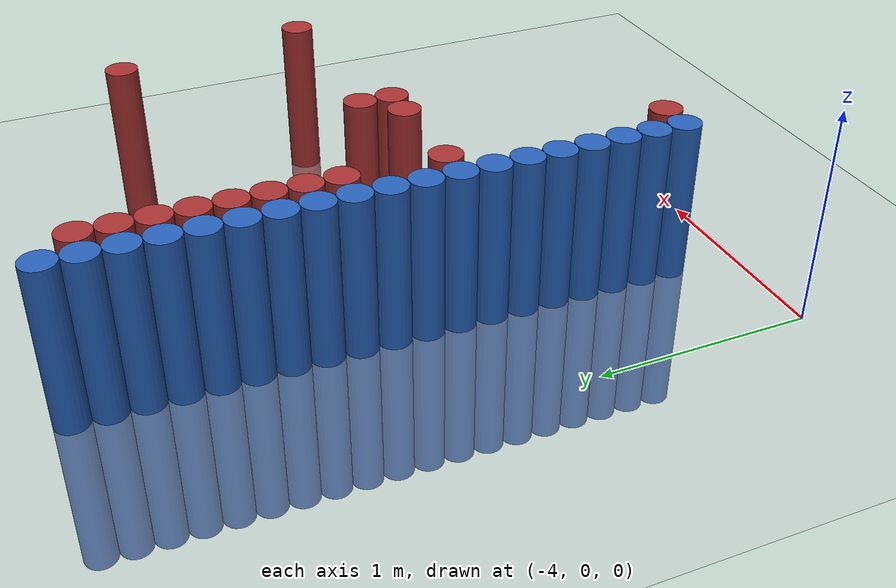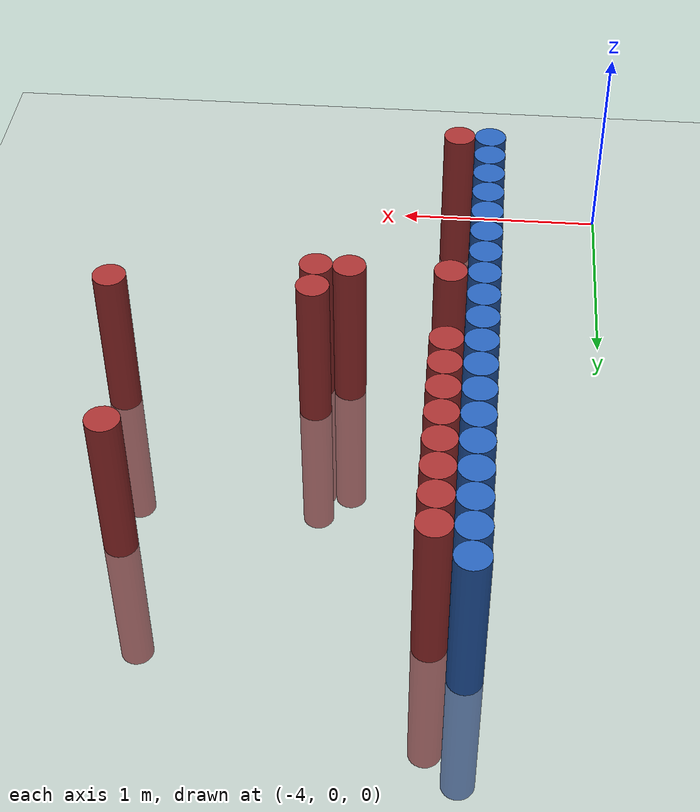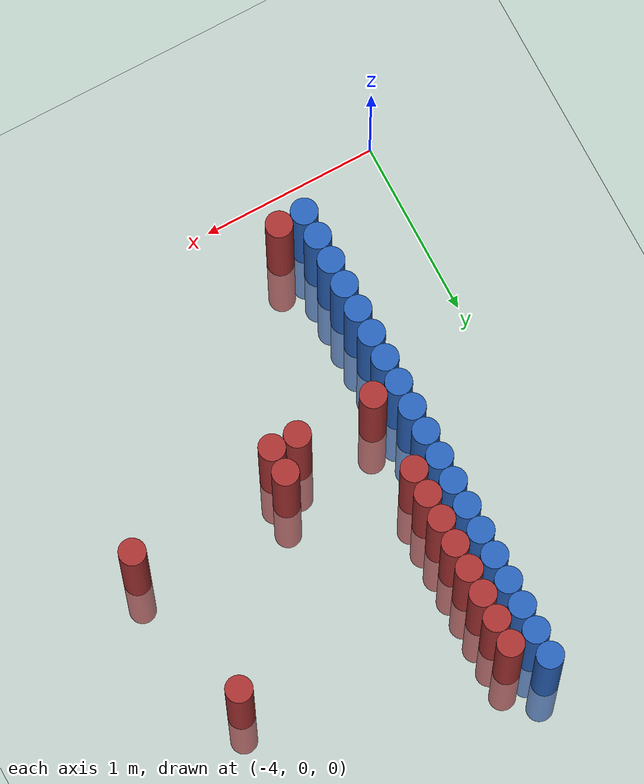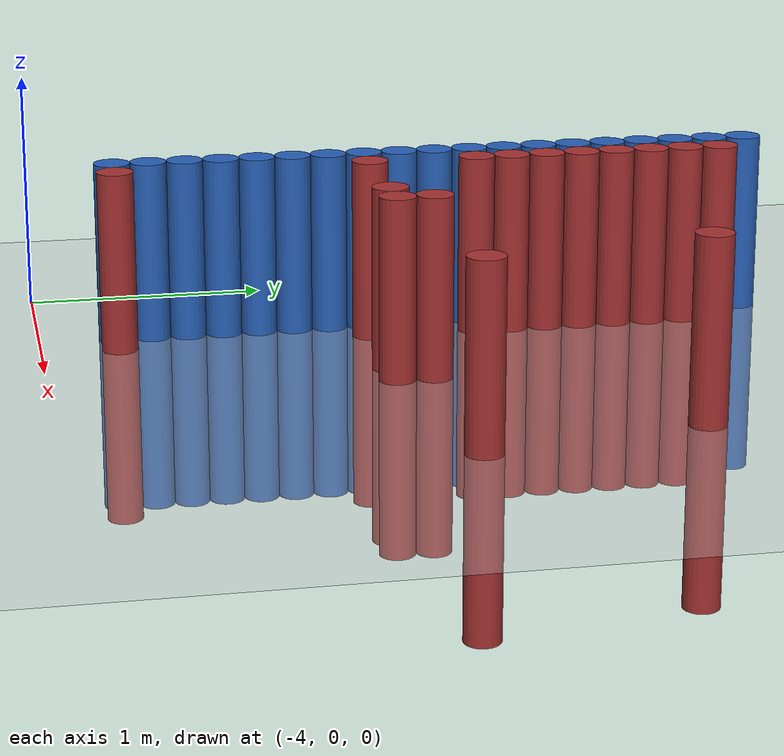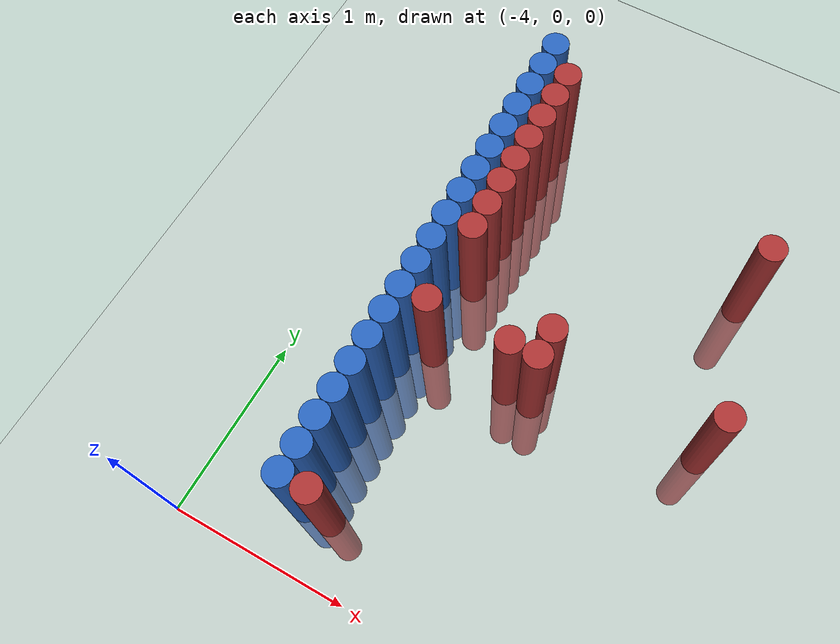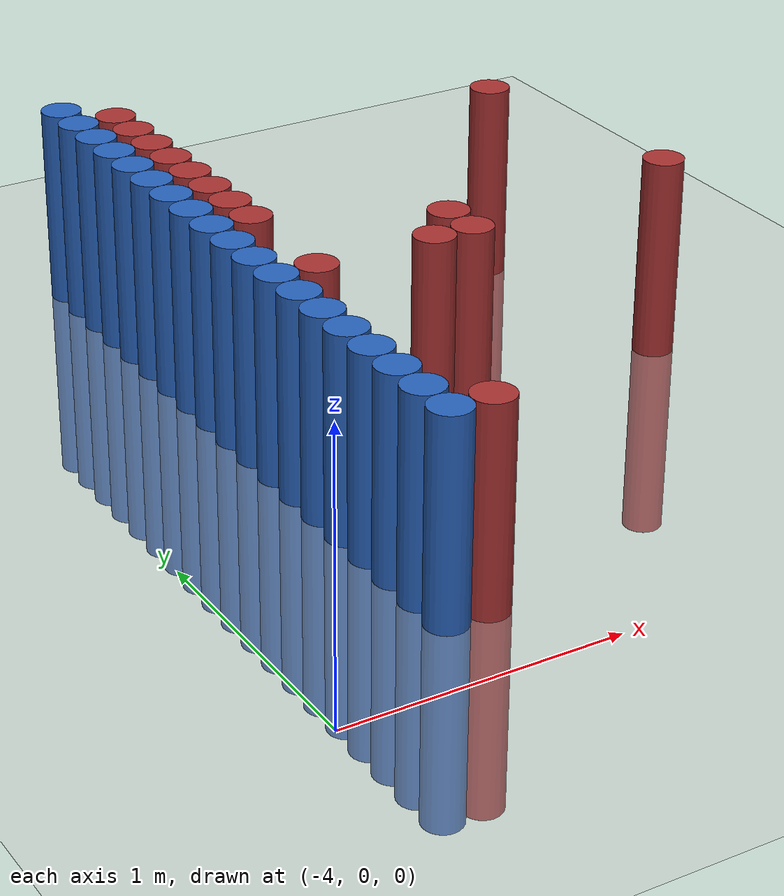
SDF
<sdf version="1.6">
 <world name="default">
  <model name="ground_plane">
   <static>1</static>
   <link name="link">
    <collision name="collision">
     <geometry><plane><normal>0 0 1</normal><size>100 100</size></plane></geometry>
     <surface><friction><ode><mu>100</mu><mu2>50</mu2></ode></friction></surface>
    </collision>
    <visual name="visual">
     <cast_shadows>0</cast_shadows>
     <geometry><plane><normal>0 0 1</normal><size>100 100</size></plane></geometry>
     <material>
      <script><uri>file://media/materials/scripts/gazebo.material</uri><name>Gazebo/Grey</name></script>
     </material>
    </visual>
   </link>
  </model>
  <model name="unit_cylinder_119">
   <static>1</static>
   <pose>-3.425000 0.325000 0.000000 0.000000 0.000000 0.000000</pose>
   <link name="link">
    <inertial>
     <mass>1</mass>
     <inertia><ixx>0.145833</ixx><ixy>0</ixy><ixz>0</ixz><iyy>0.145833</iyy><iyz>0</iyz><izz>0.125</izz></inertia>
    </inertial>
    <collision name="collision">
     <geometry><cylinder><radius>0.075000</radius><length>1.5</length></cylinder></geometry>
    </collision>
    <visual name="visual">
     <geometry><cylinder><radius>0.075000</radius><length>1.5</length></cylinder></geometry>
     <material>
      <ambient>0.152000 0.379000 0.720000 1</ambient>
      <diffuse>0.152000 0.379000 0.720000 1</diffuse>
     </material>
     <material>
      <script><name>Gazebo/Grey</name><uri>file://media/materials/scripts/gazebo.material</uri></script>
     </material>
    </visual>
   </link>
  </model>
  <model name="unit_cylinder_121">
   <static>1</static>
   <pose>-3.425000 0.475000 0.000000 0.000000 0.000000 0.000000</pose>
   <link name="link">
    <inertial>
     <mass>1</mass>
     <inertia><ixx>0.145833</ixx><ixy>0</ixy><ixz>0</ixz><iyy>0.145833</iyy><iyz>0</iyz><izz>0.125</izz></inertia>
    </inertial>
    <collision name="collision">
     <geometry><cylinder><radius>0.075000</radius><length>1.5</length></cylinder></geometry>
    </collision>
    <visual name="visual">
     <geometry><cylinder><radius>0.075000</radius><length>1.5</length></cylinder></geometry>
     <material>
      <ambient>0.152000 0.379000 0.720000 1</ambient>
      <diffuse>0.152000 0.379000 0.720000 1</diffuse>
     </material>
     <material>
      <script><name>Gazebo/Grey</name><uri>file://media/materials/scripts/gazebo.material</uri></script>
     </material>
    </visual>
   </link>
  </model>
  <model name="unit_cylinder_123">
   <static>1</static>
   <pose>-3.425000 0.625000 0.000000 0.000000 0.000000 0.000000</pose>
   <link name="link">
    <inertial>
     <mass>1</mass>
     <inertia><ixx>0.145833</ixx><ixy>0</ixy><ixz>0</ixz><iyy>0.145833</iyy><iyz>0</iyz><izz>0.125</izz></inertia>
    </inertial>
    <collision name="collision">
     <geometry><cylinder><radius>0.075000</radius><length>1.5</length></cylinder></geometry>
    </collision>
    <visual name="visual">
     <geometry><cylinder><radius>0.075000</radius><length>1.5</length></cylinder></geometry>
     <material>
      <ambient>0.152000 0.379000 0.720000 1</ambient>
      <diffuse>0.152000 0.379000 0.720000 1</diffuse>
     </material>
     <material>
      <script><name>Gazebo/Grey</name><uri>file://media/materials/scripts/gazebo.material</uri></script>
     </material>
    </visual>
   </link>
  </model>
  <model name="unit_cylinder_125">
   <static>1</static>
   <pose>-3.425000 0.775000 0.000000 0.000000 0.000000 0.000000</pose>
   <link name="link">
    <inertial>
     <mass>1</mass>
     <inertia><ixx>0.145833</ixx><ixy>0</ixy><ixz>0</ixz><iyy>0.145833</iyy><iyz>0</iyz><izz>0.125</izz></inertia>
    </inertial>
    <collision name="collision">
     <geometry><cylinder><radius>0.075000</radius><length>1.5</length></cylinder></geometry>
    </collision>
    <visual name="visual">
     <geometry><cylinder><radius>0.075000</radius><length>1.5</length></cylinder></geometry>
     <material>
      <ambient>0.152000 0.379000 0.720000 1</ambient>
      <diffuse>0.152000 0.379000 0.720000 1</diffuse>
     </material>
     <material>
      <script><name>Gazebo/Grey</name><uri>file://media/materials/scripts/gazebo.material</uri></script>
     </material>
    </visual>
   </link>
  </model>
  <model name="unit_cylinder_127">
   <static>1</static>
   <pose>-3.425000 0.925000 0.000000 0.000000 0.000000 0.000000</pose>
   <link name="link">
    <inertial>
     <mass>1</mass>
     <inertia><ixx>0.145833</ixx><ixy>0</ixy><ixz>0</ixz><iyy>0.145833</iyy><iyz>0</iyz><izz>0.125</izz></inertia>
    </inertial>
    <collision name="collision">
     <geometry><cylinder><radius>0.075000</radius><length>1.5</length></cylinder></geometry>
    </collision>
    <visual name="visual">
     <geometry><cylinder><radius>0.075000</radius><length>1.5</length></cylinder></geometry>
     <material>
      <ambient>0.152000 0.379000 0.720000 1</ambient>
      <diffuse>0.152000 0.379000 0.720000 1</diffuse>
     </material>
     <material>
      <script><name>Gazebo/Grey</name><uri>file://media/materials/scripts/gazebo.material</uri></script>
     </material>
    </visual>
   </link>
  </model>
  <model name="unit_cylinder_129">
   <static>1</static>
   <pose>-3.425000 1.075000 0.000000 0.000000 0.000000 0.000000</pose>
   <link name="link">
    <inertial>
     <mass>1</mass>
     <inertia><ixx>0.145833</ixx><ixy>0</ixy><ixz>0</ixz><iyy>0.145833</iyy><iyz>0</iyz><izz>0.125</izz></inertia>
    </inertial>
    <collision name="collision">
     <geometry><cylinder><radius>0.075000</radius><length>1.5</length></cylinder></geometry>
    </collision>
    <visual name="visual">
     <geometry><cylinder><radius>0.075000</radius><length>1.5</length></cylinder></geometry>
     <material>
      <ambient>0.152000 0.379000 0.720000 1</ambient>
      <diffuse>0.152000 0.379000 0.720000 1</diffuse>
     </material>
     <material>
      <script><name>Gazebo/Grey</name><uri>file://media/materials/scripts/gazebo.material</uri></script>
     </material>
    </visual>
   </link>
  </model>
  <model name="unit_cylinder_131">
   <static>1</static>
   <pose>-3.425000 1.225000 0.000000 0.000000 0.000000 0.000000</pose>
   <link name="link">
    <inertial>
     <mass>1</mass>
     <inertia><ixx>0.145833</ixx><ixy>0</ixy><ixz>0</ixz><iyy>0.145833</iyy><iyz>0</iyz><izz>0.125</izz></inertia>
    </inertial>
    <collision name="collision">
     <geometry><cylinder><radius>0.075000</radius><length>1.5</length></cylinder></geometry>
    </collision>
    <visual name="visual">
     <geometry><cylinder><radius>0.075000</radius><length>1.5</length></cylinder></geometry>
     <material>
      <ambient>0.152000 0.379000 0.720000 1</ambient>
      <diffuse>0.152000 0.379000 0.720000 1</diffuse>
     </material>
     <material>
      <script><name>Gazebo/Grey</name><uri>file://media/materials/scripts/gazebo.material</uri></script>
     </material>
    </visual>
   </link>
  </model>
  <model name="unit_cylinder_133">
   <static>1</static>
   <pose>-3.425000 1.375000 0.000000 0.000000 0.000000 0.000000</pose>
   <link name="link">
    <inertial>
     <mass>1</mass>
     <inertia><ixx>0.145833</ixx><ixy>0</ixy><ixz>0</ixz><iyy>0.145833</iyy><iyz>0</iyz><izz>0.125</izz></inertia>
    </inertial>
    <collision name="collision">
     <geometry><cylinder><radius>0.075000</radius><length>1.5</length></cylinder></geometry>
    </collision>
    <visual name="visual">
     <geometry><cylinder><radius>0.075000</radius><length>1.5</length></cylinder></geometry>
     <material>
      <ambient>0.152000 0.379000 0.720000 1</ambient>
      <diffuse>0.152000 0.379000 0.720000 1</diffuse>
     </material>
     <material>
      <script><name>Gazebo/Grey</name><uri>file://media/materials/scripts/gazebo.material</uri></script>
     </material>
    </visual>
   </link>
  </model>
  <model name="unit_cylinder_135">
   <static>1</static>
   <pose>-3.425000 1.525000 0.000000 0.000000 0.000000 0.000000</pose>
   <link name="link">
    <inertial>
     <mass>1</mass>
     <inertia><ixx>0.145833</ixx><ixy>0</ixy><ixz>0</ixz><iyy>0.145833</iyy><iyz>0</iyz><izz>0.125</izz></inertia>
    </inertial>
    <collision name="collision">
     <geometry><cylinder><radius>0.075000</radius><length>1.5</length></cylinder></geometry>
    </collision>
    <visual name="visual">
     <geometry><cylinder><radius>0.075000</radius><length>1.5</length></cylinder></geometry>
     <material>
      <ambient>0.152000 0.379000 0.720000 1</ambient>
      <diffuse>0.152000 0.379000 0.720000 1</diffuse>
     </material>
     <material>
      <script><name>Gazebo/Grey</name><uri>file://media/materials/scripts/gazebo.material</uri></script>
     </material>
    </visual>
   </link>
  </model>
  <model name="unit_cylinder_137">
   <static>1</static>
   <pose>-3.425000 1.675000 0.000000 0.000000 0.000000 0.000000</pose>
   <link name="link">
    <inertial>
     <mass>1</mass>
     <inertia><ixx>0.145833</ixx><ixy>0</ixy><ixz>0</ixz><iyy>0.145833</iyy><iyz>0</iyz><izz>0.125</izz></inertia>
    </inertial>
    <collision name="collision">
     <geometry><cylinder><radius>0.075000</radius><length>1.5</length></cylinder></geometry>
    </collision>
    <visual name="visual">
     <geometry><cylinder><radius>0.075000</radius><length>1.5</length></cylinder></geometry>
     <material>
      <ambient>0.152000 0.379000 0.720000 1</ambient>
      <diffuse>0.152000 0.379000 0.720000 1</diffuse>
     </material>
     <material>
      <script><name>Gazebo/Grey</name><uri>file://media/materials/scripts/gazebo.material</uri></script>
     </material>
    </visual>
   </link>
  </model>
  <model name="unit_cylinder_139">
   <static>1</static>
   <pose>-3.425000 1.825000 0.000000 0.000000 0.000000 0.000000</pose>
   <link name="link">
    <inertial>
     <mass>1</mass>
     <inertia><ixx>0.145833</ixx><ixy>0</ixy><ixz>0</ixz><iyy>0.145833</iyy><iyz>0</iyz><izz>0.125</izz></inertia>
    </inertial>
    <collision name="collision">
     <geometry><cylinder><radius>0.075000</radius><length>1.5</length></cylinder></geometry>
    </collision>
    <visual name="visual">
     <geometry><cylinder><radius>0.075000</radius><length>1.5</length></cylinder></geometry>
     <material>
      <ambient>0.152000 0.379000 0.720000 1</ambient>
      <diffuse>0.152000 0.379000 0.720000 1</diffuse>
     </material>
     <material>
      <script><name>Gazebo/Grey</name><uri>file://media/materials/scripts/gazebo.material</uri></script>
     </material>
    </visual>
   </link>
  </model>
  <model name="unit_cylinder_141">
   <static>1</static>
   <pose>-3.425000 1.975000 0.000000 0.000000 0.000000 0.000000</pose>
   <link name="link">
    <inertial>
     <mass>1</mass>
     <inertia><ixx>0.145833</ixx><ixy>0</ixy><ixz>0</ixz><iyy>0.145833</iyy><iyz>0</iyz><izz>0.125</izz></inertia>
    </inertial>
    <collision name="collision">
     <geometry><cylinder><radius>0.075000</radius><length>1.5</length></cylinder></geometry>
    </collision>
    <visual name="visual">
     <geometry><cylinder><radius>0.075000</radius><length>1.5</length></cylinder></geometry>
     <material>
      <ambient>0.152000 0.379000 0.720000 1</ambient>
      <diffuse>0.152000 0.379000 0.720000 1</diffuse>
     </material>
     <material>
      <script><name>Gazebo/Grey</name><uri>file://media/materials/scripts/gazebo.material</uri></script>
     </material>
    </visual>
   </link>
  </model>
  <model name="unit_cylinder_143">
   <static>1</static>
   <pose>-3.425000 2.125000 0.000000 0.000000 0.000000 0.000000</pose>
   <link name="link">
    <inertial>
     <mass>1</mass>
     <inertia><ixx>0.145833</ixx><ixy>0</ixy><ixz>0</ixz><iyy>0.145833</iyy><iyz>0</iyz><izz>0.125</izz></inertia>
    </inertial>
    <collision name="collision">
     <geometry><cylinder><radius>0.075000</radius><length>1.5</length></cylinder></geometry>
    </collision>
    <visual name="visual">
     <geometry><cylinder><radius>0.075000</radius><length>1.5</length></cylinder></geometry>
     <material>
      <ambient>0.152000 0.379000 0.720000 1</ambient>
      <diffuse>0.152000 0.379000 0.720000 1</diffuse>
     </material>
     <material>
      <script><name>Gazebo/Grey</name><uri>file://media/materials/scripts/gazebo.material</uri></script>
     </material>
    </visual>
   </link>
  </model>
  <model name="unit_cylinder_145">
   <static>1</static>
   <pose>-3.425000 2.275000 0.000000 0.000000 0.000000 0.000000</pose>
   <link name="link">
    <inertial>
     <mass>1</mass>
     <inertia><ixx>0.145833</ixx><ixy>0</ixy><ixz>0</ixz><iyy>0.145833</iyy><iyz>0</iyz><izz>0.125</izz></inertia>
    </inertial>
    <collision name="collision">
     <geometry><cylinder><radius>0.075000</radius><length>1.5</length></cylinder></geometry>
    </collision>
    <visual name="visual">
     <geometry><cylinder><radius>0.075000</radius><length>1.5</length></cylinder></geometry>
     <material>
      <ambient>0.152000 0.379000 0.720000 1</ambient>
      <diffuse>0.152000 0.379000 0.720000 1</diffuse>
     </material>
     <material>
      <script><name>Gazebo/Grey</name><uri>file://media/materials/scripts/gazebo.material</uri></script>
     </material>
    </visual>
   </link>
  </model>
  <model name="unit_cylinder_147">
   <static>1</static>
   <pose>-3.425000 2.425000 0.000000 0.000000 0.000000 0.000000</pose>
   <link name="link">
    <inertial>
     <mass>1</mass>
     <inertia><ixx>0.145833</ixx><ixy>0</ixy><ixz>0</ixz><iyy>0.145833</iyy><iyz>0</iyz><izz>0.125</izz></inertia>
    </inertial>
    <collision name="collision">
     <geometry><cylinder><radius>0.075000</radius><length>1.5</length></cylinder></geometry>
    </collision>
    <visual name="visual">
     <geometry><cylinder><radius>0.075000</radius><length>1.5</length></cylinder></geometry>
     <material>
      <ambient>0.152000 0.379000 0.720000 1</ambient>
      <diffuse>0.152000 0.379000 0.720000 1</diffuse>
     </material>
     <material>
      <script><name>Gazebo/Grey</name><uri>file://media/materials/scripts/gazebo.material</uri></script>
     </material>
    </visual>
   </link>
  </model>
  <model name="unit_cylinder_149">
   <static>1</static>
   <pose>-3.425000 2.575000 0.000000 0.000000 0.000000 0.000000</pose>
   <link name="link">
    <inertial>
     <mass>1</mass>
     <inertia><ixx>0.145833</ixx><ixy>0</ixy><ixz>0</ixz><iyy>0.145833</iyy><iyz>0</iyz><izz>0.125</izz></inertia>
    </inertial>
    <collision name="collision">
     <geometry><cylinder><radius>0.075000</radius><length>1.5</length></cylinder></geometry>
    </collision>
    <visual name="visual">
     <geometry><cylinder><radius>0.075000</radius><length>1.5</length></cylinder></geometry>
     <material>
      <ambient>0.152000 0.379000 0.720000 1</ambient>
      <diffuse>0.152000 0.379000 0.720000 1</diffuse>
     </material>
     <material>
      <script><name>Gazebo/Grey</name><uri>file://media/materials/scripts/gazebo.material</uri></script>
     </material>
    </visual>
   </link>
  </model>
  <model name="unit_cylinder_151">
   <static>1</static>
   <pose>-3.425000 2.725000 0.000000 0.000000 0.000000 0.000000</pose>
   <link name="link">
    <inertial>
     <mass>1</mass>
     <inertia><ixx>0.145833</ixx><ixy>0</ixy><ixz>0</ixz><iyy>0.145833</iyy><iyz>0</iyz><izz>0.125</izz></inertia>
    </inertial>
    <collision name="collision">
     <geometry><cylinder><radius>0.075000</radius><length>1.5</length></cylinder></geometry>
    </collision>
    <visual name="visual">
     <geometry><cylinder><radius>0.075000</radius><length>1.5</length></cylinder></geometry>
     <material>
      <ambient>0.152000 0.379000 0.720000 1</ambient>
      <diffuse>0.152000 0.379000 0.720000 1</diffuse>
     </material>
     <material>
      <script><name>Gazebo/Grey</name><uri>file://media/materials/scripts/gazebo.material</uri></script>
     </material>
    </visual>
   </link>
  </model>
  <model name="unit_cylinder_153">
   <static>1</static>
   <pose>-3.425000 2.875000 0.000000 0.000000 0.000000 0.000000</pose>
   <link name="link">
    <inertial>
     <mass>1</mass>
     <inertia><ixx>0.145833</ixx><ixy>0</ixy><ixz>0</ixz><iyy>0.145833</iyy><iyz>0</iyz><izz>0.125</izz></inertia>
    </inertial>
    <collision name="collision">
     <geometry><cylinder><radius>0.075000</radius><length>1.5</length></cylinder></geometry>
    </collision>
    <visual name="visual">
     <geometry><cylinder><radius>0.075000</radius><length>1.5</length></cylinder></geometry>
     <material>
      <ambient>0.152000 0.379000 0.720000 1</ambient>
      <diffuse>0.152000 0.379000 0.720000 1</diffuse>
     </material>
     <material>
      <script><name>Gazebo/Grey</name><uri>file://media/materials/scripts/gazebo.material</uri></script>
     </material>
    </visual>
   </link>
  </model>
  <model name="unit_cylinder_155">
   <static>1</static>
   <pose>-3.425000 3.025000 0.000000 0.000000 0.000000 0.000000</pose>
   <link name="link">
    <inertial>
     <mass>1</mass>
     <inertia><ixx>0.145833</ixx><ixy>0</ixy><ixz>0</ixz><iyy>0.145833</iyy><iyz>0</iyz><izz>0.125</izz></inertia>
    </inertial>
    <collision name="collision">
     <geometry><cylinder><radius>0.075000</radius><length>1.5</length></cylinder></geometry>
    </collision>
    <visual name="visual">
     <geometry><cylinder><radius>0.075000</radius><length>1.5</length></cylinder></geometry>
     <material>
      <ambient>0.152000 0.379000 0.720000 1</ambient>
      <diffuse>0.152000 0.379000 0.720000 1</diffuse>
     </material>
     <material>
      <script><name>Gazebo/Grey</name><uri>file://media/materials/scripts/gazebo.material</uri></script>
     </material>
    </visual>
   </link>
  </model>
  <model name="unit_cylinder_223">
   <static>1</static>
   <pose>-3.425000 0.325000 0.000000 0.000000 0.000000 0.000000</pose>
   <link name="link">
    <inertial>
     <mass>1</mass>
     <inertia><ixx>0.145833</ixx><ixy>0</ixy><ixz>0</ixz><iyy>0.145833</iyy><iyz>0</iyz><izz>0.125</izz></inertia>
    </inertial>
    <collision name="collision">
     <geometry><cylinder><radius>0.075000</radius><length>1.5</length></cylinder></geometry>
    </collision>
    <visual name="visual">
     <geometry><cylinder><radius>0.075000</radius><length>1.5</length></cylinder></geometry>
     <material>
      <ambient>0.152000 0.379000 0.720000 1</ambient>
      <diffuse>0.152000 0.379000 0.720000 1</diffuse>
     </material>
     <material>
      <script><name>Gazebo/Grey</name><uri>file://media/materials/scripts/gazebo.material</uri></script>
     </material>
    </visual>
   </link>
  </model>
  <model name="unit_cylinder_224">
   <static>1</static>
   <pose>-3.425000 0.475000 0.000000 0.000000 0.000000 0.000000</pose>
   <link name="link">
    <inertial>
     <mass>1</mass>
     <inertia><ixx>0.145833</ixx><ixy>0</ixy><ixz>0</ixz><iyy>0.145833</iyy><iyz>0</iyz><izz>0.125</izz></inertia>
    </inertial>
    <collision name="collision">
     <geometry><cylinder><radius>0.075000</radius><length>1.5</length></cylinder></geometry>
    </collision>
    <visual name="visual">
     <geometry><cylinder><radius>0.075000</radius><length>1.5</length></cylinder></geometry>
     <material>
      <ambient>0.152000 0.379000 0.720000 1</ambient>
      <diffuse>0.152000 0.379000 0.720000 1</diffuse>
     </material>
     <material>
      <script><name>Gazebo/Grey</name><uri>file://media/materials/scripts/gazebo.material</uri></script>
     </material>
    </visual>
   </link>
  </model>
  <model name="unit_cylinder_225">
   <static>1</static>
   <pose>-3.425000 0.625000 0.000000 0.000000 0.000000 0.000000</pose>
   <link name="link">
    <inertial>
     <mass>1</mass>
     <inertia><ixx>0.145833</ixx><ixy>0</ixy><ixz>0</ixz><iyy>0.145833</iyy><iyz>0</iyz><izz>0.125</izz></inertia>
    </inertial>
    <collision name="collision">
     <geometry><cylinder><radius>0.075000</radius><length>1.5</length></cylinder></geometry>
    </collision>
    <visual name="visual">
     <geometry><cylinder><radius>0.075000</radius><length>1.5</length></cylinder></geometry>
     <material>
      <ambient>0.152000 0.379000 0.720000 1</ambient>
      <diffuse>0.152000 0.379000 0.720000 1</diffuse>
     </material>
     <material>
      <script><name>Gazebo/Grey</name><uri>file://media/materials/scripts/gazebo.material</uri></script>
     </material>
    </visual>
   </link>
  </model>
  <model name="unit_cylinder_226">
   <static>1</static>
   <pose>-3.425000 0.775000 0.000000 0.000000 0.000000 0.000000</pose>
   <link name="link">
    <inertial>
     <mass>1</mass>
     <inertia><ixx>0.145833</ixx><ixy>0</ixy><ixz>0</ixz><iyy>0.145833</iyy><iyz>0</iyz><izz>0.125</izz></inertia>
    </inertial>
    <collision name="collision">
     <geometry><cylinder><radius>0.075000</radius><length>1.5</length></cylinder></geometry>
    </collision>
    <visual name="visual">
     <geometry><cylinder><radius>0.075000</radius><length>1.5</length></cylinder></geometry>
     <material>
      <ambient>0.152000 0.379000 0.720000 1</ambient>
      <diffuse>0.152000 0.379000 0.720000 1</diffuse>
     </material>
     <material>
      <script><name>Gazebo/Grey</name><uri>file://media/materials/scripts/gazebo.material</uri></script>
     </material>
    </visual>
   </link>
  </model>
  <model name="unit_cylinder_227">
   <static>1</static>
   <pose>-3.425000 0.925000 0.000000 0.000000 0.000000 0.000000</pose>
   <link name="link">
    <inertial>
     <mass>1</mass>
     <inertia><ixx>0.145833</ixx><ixy>0</ixy><ixz>0</ixz><iyy>0.145833</iyy><iyz>0</iyz><izz>0.125</izz></inertia>
    </inertial>
    <collision name="collision">
     <geometry><cylinder><radius>0.075000</radius><length>1.5</length></cylinder></geometry>
    </collision>
    <visual name="visual">
     <geometry><cylinder><radius>0.075000</radius><length>1.5</length></cylinder></geometry>
     <material>
      <ambient>0.152000 0.379000 0.720000 1</ambient>
      <diffuse>0.152000 0.379000 0.720000 1</diffuse>
     </material>
     <material>
      <script><name>Gazebo/Grey</name><uri>file://media/materials/scripts/gazebo.material</uri></script>
     </material>
    </visual>
   </link>
  </model>
  <model name="unit_cylinder_228">
   <static>1</static>
   <pose>-3.425000 1.075000 0.000000 0.000000 0.000000 0.000000</pose>
   <link name="link">
    <inertial>
     <mass>1</mass>
     <inertia><ixx>0.145833</ixx><ixy>0</ixy><ixz>0</ixz><iyy>0.145833</iyy><iyz>0</iyz><izz>0.125</izz></inertia>
    </inertial>
    <collision name="collision">
     <geometry><cylinder><radius>0.075000</radius><length>1.5</length></cylinder></geometry>
    </collision>
    <visual name="visual">
     <geometry><cylinder><radius>0.075000</radius><length>1.5</length></cylinder></geometry>
     <material>
      <ambient>0.152000 0.379000 0.720000 1</ambient>
      <diffuse>0.152000 0.379000 0.720000 1</diffuse>
     </material>
     <material>
      <script><name>Gazebo/Grey</name><uri>file://media/materials/scripts/gazebo.material</uri></script>
     </material>
    </visual>
   </link>
  </model>
  <model name="unit_cylinder_229">
   <static>1</static>
   <pose>-3.425000 1.225000 0.000000 0.000000 0.000000 0.000000</pose>
   <link name="link">
    <inertial>
     <mass>1</mass>
     <inertia><ixx>0.145833</ixx><ixy>0</ixy><ixz>0</ixz><iyy>0.145833</iyy><iyz>0</iyz><izz>0.125</izz></inertia>
    </inertial>
    <collision name="collision">
     <geometry><cylinder><radius>0.075000</radius><length>1.5</length></cylinder></geometry>
    </collision>
    <visual name="visual">
     <geometry><cylinder><radius>0.075000</radius><length>1.5</length></cylinder></geometry>
     <material>
      <ambient>0.152000 0.379000 0.720000 1</ambient>
      <diffuse>0.152000 0.379000 0.720000 1</diffuse>
     </material>
     <material>
      <script><name>Gazebo/Grey</name><uri>file://media/materials/scripts/gazebo.material</uri></script>
     </material>
    </visual>
   </link>
  </model>
  <model name="unit_cylinder_230">
   <static>1</static>
   <pose>-3.425000 1.375000 0.000000 0.000000 0.000000 0.000000</pose>
   <link name="link">
    <inertial>
     <mass>1</mass>
     <inertia><ixx>0.145833</ixx><ixy>0</ixy><ixz>0</ixz><iyy>0.145833</iyy><iyz>0</iyz><izz>0.125</izz></inertia>
    </inertial>
    <collision name="collision">
     <geometry><cylinder><radius>0.075000</radius><length>1.5</length></cylinder></geometry>
    </collision>
    <visual name="visual">
     <geometry><cylinder><radius>0.075000</radius><length>1.5</length></cylinder></geometry>
     <material>
      <ambient>0.152000 0.379000 0.720000 1</ambient>
      <diffuse>0.152000 0.379000 0.720000 1</diffuse>
     </material>
     <material>
      <script><name>Gazebo/Grey</name><uri>file://media/materials/scripts/gazebo.material</uri></script>
     </material>
    </visual>
   </link>
  </model>
  <model name="unit_cylinder_231">
   <static>1</static>
   <pose>-3.425000 1.525000 0.000000 0.000000 0.000000 0.000000</pose>
   <link name="link">
    <inertial>
     <mass>1</mass>
     <inertia><ixx>0.145833</ixx><ixy>0</ixy><ixz>0</ixz><iyy>0.145833</iyy><iyz>0</iyz><izz>0.125</izz></inertia>
    </inertial>
    <collision name="collision">
     <geometry><cylinder><radius>0.075000</radius><length>1.5</length></cylinder></geometry>
    </collision>
    <visual name="visual">
     <geometry><cylinder><radius>0.075000</radius><length>1.5</length></cylinder></geometry>
     <material>
      <ambient>0.152000 0.379000 0.720000 1</ambient>
      <diffuse>0.152000 0.379000 0.720000 1</diffuse>
     </material>
     <material>
      <script><name>Gazebo/Grey</name><uri>file://media/materials/scripts/gazebo.material</uri></script>
     </material>
    </visual>
   </link>
  </model>
  <model name="unit_cylinder_232">
   <static>1</static>
   <pose>-3.425000 1.675000 0.000000 0.000000 0.000000 0.000000</pose>
   <link name="link">
    <inertial>
     <mass>1</mass>
     <inertia><ixx>0.145833</ixx><ixy>0</ixy><ixz>0</ixz><iyy>0.145833</iyy><iyz>0</iyz><izz>0.125</izz></inertia>
    </inertial>
    <collision name="collision">
     <geometry><cylinder><radius>0.075000</radius><length>1.5</length></cylinder></geometry>
    </collision>
    <visual name="visual">
     <geometry><cylinder><radius>0.075000</radius><length>1.5</length></cylinder></geometry>
     <material>
      <ambient>0.152000 0.379000 0.720000 1</ambient>
      <diffuse>0.152000 0.379000 0.720000 1</diffuse>
     </material>
     <material>
      <script><name>Gazebo/Grey</name><uri>file://media/materials/scripts/gazebo.material</uri></script>
     </material>
    </visual>
   </link>
  </model>
  <model name="unit_cylinder_233">
   <static>1</static>
   <pose>-3.425000 1.825000 0.000000 0.000000 0.000000 0.000000</pose>
   <link name="link">
    <inertial>
     <mass>1</mass>
     <inertia><ixx>0.145833</ixx><ixy>0</ixy><ixz>0</ixz><iyy>0.145833</iyy><iyz>0</iyz><izz>0.125</izz></inertia>
    </inertial>
    <collision name="collision">
     <geometry><cylinder><radius>0.075000</radius><length>1.5</length></cylinder></geometry>
    </collision>
    <visual name="visual">
     <geometry><cylinder><radius>0.075000</radius><length>1.5</length></cylinder></geometry>
     <material>
      <ambient>0.152000 0.379000 0.720000 1</ambient>
      <diffuse>0.152000 0.379000 0.720000 1</diffuse>
     </material>
     <material>
      <script><name>Gazebo/Grey</name><uri>file://media/materials/scripts/gazebo.material</uri></script>
     </material>
    </visual>
   </link>
  </model>
  <model name="unit_cylinder_234">
   <static>1</static>
   <pose>-3.425000 1.975000 0.000000 0.000000 0.000000 0.000000</pose>
   <link name="link">
    <inertial>
     <mass>1</mass>
     <inertia><ixx>0.145833</ixx><ixy>0</ixy><ixz>0</ixz><iyy>0.145833</iyy><iyz>0</iyz><izz>0.125</izz></inertia>
    </inertial>
    <collision name="collision">
     <geometry><cylinder><radius>0.075000</radius><length>1.5</length></cylinder></geometry>
    </collision>
    <visual name="visual">
     <geometry><cylinder><radius>0.075000</radius><length>1.5</length></cylinder></geometry>
     <material>
      <ambient>0.152000 0.379000 0.720000 1</ambient>
      <diffuse>0.152000 0.379000 0.720000 1</diffuse>
     </material>
     <material>
      <script><name>Gazebo/Grey</name><uri>file://media/materials/scripts/gazebo.material</uri></script>
     </material>
    </visual>
   </link>
  </model>
  <model name="unit_cylinder_235">
   <static>1</static>
   <pose>-3.425000 2.125000 0.000000 0.000000 0.000000 0.000000</pose>
   <link name="link">
    <inertial>
     <mass>1</mass>
     <inertia><ixx>0.145833</ixx><ixy>0</ixy><ixz>0</ixz><iyy>0.145833</iyy><iyz>0</iyz><izz>0.125</izz></inertia>
    </inertial>
    <collision name="collision">
     <geometry><cylinder><radius>0.075000</radius><length>1.5</length></cylinder></geometry>
    </collision>
    <visual name="visual">
     <geometry><cylinder><radius>0.075000</radius><length>1.5</length></cylinder></geometry>
     <material>
      <ambient>0.152000 0.379000 0.720000 1</ambient>
      <diffuse>0.152000 0.379000 0.720000 1</diffuse>
     </material>
     <material>
      <script><name>Gazebo/Grey</name><uri>file://media/materials/scripts/gazebo.material</uri></script>
     </material>
    </visual>
   </link>
  </model>
  <model name="unit_cylinder_236">
   <static>1</static>
   <pose>-3.425000 2.275000 0.000000 0.000000 0.000000 0.000000</pose>
   <link name="link">
    <inertial>
     <mass>1</mass>
     <inertia><ixx>0.145833</ixx><ixy>0</ixy><ixz>0</ixz><iyy>0.145833</iyy><iyz>0</iyz><izz>0.125</izz></inertia>
    </inertial>
    <collision name="collision">
     <geometry><cylinder><radius>0.075000</radius><length>1.5</length></cylinder></geometry>
    </collision>
    <visual name="visual">
     <geometry><cylinder><radius>0.075000</radius><length>1.5</length></cylinder></geometry>
     <material>
      <ambient>0.152000 0.379000 0.720000 1</ambient>
      <diffuse>0.152000 0.379000 0.720000 1</diffuse>
     </material>
     <material>
      <script><name>Gazebo/Grey</name><uri>file://media/materials/scripts/gazebo.material</uri></script>
     </material>
    </visual>
   </link>
  </model>
  <model name="unit_cylinder_237">
   <static>1</static>
   <pose>-3.425000 2.425000 0.000000 0.000000 0.000000 0.000000</pose>
   <link name="link">
    <inertial>
     <mass>1</mass>
     <inertia><ixx>0.145833</ixx><ixy>0</ixy><ixz>0</ixz><iyy>0.145833</iyy><iyz>0</iyz><izz>0.125</izz></inertia>
    </inertial>
    <collision name="collision">
     <geometry><cylinder><radius>0.075000</radius><length>1.5</length></cylinder></geometry>
    </collision>
    <visual name="visual">
     <geometry><cylinder><radius>0.075000</radius><length>1.5</length></cylinder></geometry>
     <material>
      <ambient>0.152000 0.379000 0.720000 1</ambient>
      <diffuse>0.152000 0.379000 0.720000 1</diffuse>
     </material>
     <material>
      <script><name>Gazebo/Grey</name><uri>file://media/materials/scripts/gazebo.material</uri></script>
     </material>
    </visual>
   </link>
  </model>
  <model name="unit_cylinder_238">
   <static>1</static>
   <pose>-3.425000 2.575000 0.000000 0.000000 0.000000 0.000000</pose>
   <link name="link">
    <inertial>
     <mass>1</mass>
     <inertia><ixx>0.145833</ixx><ixy>0</ixy><ixz>0</ixz><iyy>0.145833</iyy><iyz>0</iyz><izz>0.125</izz></inertia>
    </inertial>
    <collision name="collision">
     <geometry><cylinder><radius>0.075000</radius><length>1.5</length></cylinder></geometry>
    </collision>
    <visual name="visual">
     <geometry><cylinder><radius>0.075000</radius><length>1.5</length></cylinder></geometry>
     <material>
      <ambient>0.152000 0.379000 0.720000 1</ambient>
      <diffuse>0.152000 0.379000 0.720000 1</diffuse>
     </material>
     <material>
      <script><name>Gazebo/Grey</name><uri>file://media/materials/scripts/gazebo.material</uri></script>
     </material>
    </visual>
   </link>
  </model>
  <model name="unit_cylinder_239">
   <static>1</static>
   <pose>-3.425000 2.725000 0.000000 0.000000 0.000000 0.000000</pose>
   <link name="link">
    <inertial>
     <mass>1</mass>
     <inertia><ixx>0.145833</ixx><ixy>0</ixy><ixz>0</ixz><iyy>0.145833</iyy><iyz>0</iyz><izz>0.125</izz></inertia>
    </inertial>
    <collision name="collision">
     <geometry><cylinder><radius>0.075000</radius><length>1.5</length></cylinder></geometry>
    </collision>
    <visual name="visual">
     <geometry><cylinder><radius>0.075000</radius><length>1.5</length></cylinder></geometry>
     <material>
      <ambient>0.152000 0.379000 0.720000 1</ambient>
      <diffuse>0.152000 0.379000 0.720000 1</diffuse>
     </material>
     <material>
      <script><name>Gazebo/Grey</name><uri>file://media/materials/scripts/gazebo.material</uri></script>
     </material>
    </visual>
   </link>
  </model>
  <model name="unit_cylinder_240">
   <static>1</static>
   <pose>-3.425000 2.875000 0.000000 0.000000 0.000000 0.000000</pose>
   <link name="link">
    <inertial>
     <mass>1</mass>
     <inertia><ixx>0.145833</ixx><ixy>0</ixy><ixz>0</ixz><iyy>0.145833</iyy><iyz>0</iyz><izz>0.125</izz></inertia>
    </inertial>
    <collision name="collision">
     <geometry><cylinder><radius>0.075000</radius><length>1.5</length></cylinder></geometry>
    </collision>
    <visual name="visual">
     <geometry><cylinder><radius>0.075000</radius><length>1.5</length></cylinder></geometry>
     <material>
      <ambient>0.152000 0.379000 0.720000 1</ambient>
      <diffuse>0.152000 0.379000 0.720000 1</diffuse>
     </material>
     <material>
      <script><name>Gazebo/Grey</name><uri>file://media/materials/scripts/gazebo.material</uri></script>
     </material>
    </visual>
   </link>
  </model>
  <model name="unit_cylinder_270">
   <static>1</static>
   <pose>-3.275000 0.325000 0.000000 0.000000 0.000000 0.000000</pose>
   <link name="link">
    <inertial>
     <mass>1</mass>
     <inertia><ixx>0.145833</ixx><ixy>0</ixy><ixz>0</ixz><iyy>0.145833</iyy><iyz>0</iyz><izz>0.125</izz></inertia>
    </inertial>
    <collision name="collision">
     <geometry><cylinder><radius>0.075000</radius><length>1.5</length></cylinder></geometry>
    </collision>
    <visual name="visual">
     <geometry><cylinder><radius>0.075000</radius><length>1.5</length></cylinder></geometry>
     <material>
      <ambient>0.648000 0.192000 0.192000 1</ambient>
      <diffuse>0.648000 0.192000 0.192000 1</diffuse>
     </material>
     <material>
      <script><name>Gazebo/Grey</name><uri>file://media/materials/scripts/gazebo.material</uri></script>
     </material>
    </visual>
   </link>
  </model>
  <model name="unit_cylinder_271">
   <static>1</static>
   <pose>-3.275000 1.375000 0.000000 0.000000 0.000000 0.000000</pose>
   <link name="link">
    <inertial>
     <mass>1</mass>
     <inertia><ixx>0.145833</ixx><ixy>0</ixy><ixz>0</ixz><iyy>0.145833</iyy><iyz>0</iyz><izz>0.125</izz></inertia>
    </inertial>
    <collision name="collision">
     <geometry><cylinder><radius>0.075000</radius><length>1.5</length></cylinder></geometry>
    </collision>
    <visual name="visual">
     <geometry><cylinder><radius>0.075000</radius><length>1.5</length></cylinder></geometry>
     <material>
      <ambient>0.648000 0.192000 0.192000 1</ambient>
      <diffuse>0.648000 0.192000 0.192000 1</diffuse>
     </material>
     <material>
      <script><name>Gazebo/Grey</name><uri>file://media/materials/scripts/gazebo.material</uri></script>
     </material>
    </visual>
   </link>
  </model>
  <model name="unit_cylinder_272">
   <static>1</static>
   <pose>-3.275000 1.825000 0.000000 0.000000 0.000000 0.000000</pose>
   <link name="link">
    <inertial>
     <mass>1</mass>
     <inertia><ixx>0.145833</ixx><ixy>0</ixy><ixz>0</ixz><iyy>0.145833</iyy><iyz>0</iyz><izz>0.125</izz></inertia>
    </inertial>
    <collision name="collision">
     <geometry><cylinder><radius>0.075000</radius><length>1.5</length></cylinder></geometry>
    </collision>
    <visual name="visual">
     <geometry><cylinder><radius>0.075000</radius><length>1.5</length></cylinder></geometry>
     <material>
      <ambient>0.648000 0.192000 0.192000 1</ambient>
      <diffuse>0.648000 0.192000 0.192000 1</diffuse>
     </material>
     <material>
      <script><name>Gazebo/Grey</name><uri>file://media/materials/scripts/gazebo.material</uri></script>
     </material>
    </visual>
   </link>
  </model>
  <model name="unit_cylinder_273">
   <static>1</static>
   <pose>-3.275000 1.975000 0.000000 0.000000 0.000000 0.000000</pose>
   <link name="link">
    <inertial>
     <mass>1</mass>
     <inertia><ixx>0.145833</ixx><ixy>0</ixy><ixz>0</ixz><iyy>0.145833</iyy><iyz>0</iyz><izz>0.125</izz></inertia>
    </inertial>
    <collision name="collision">
     <geometry><cylinder><radius>0.075000</radius><length>1.5</length></cylinder></geometry>
    </collision>
    <visual name="visual">
     <geometry><cylinder><radius>0.075000</radius><length>1.5</length></cylinder></geometry>
     <material>
      <ambient>0.648000 0.192000 0.192000 1</ambient>
      <diffuse>0.648000 0.192000 0.192000 1</diffuse>
     </material>
     <material>
      <script><name>Gazebo/Grey</name><uri>file://media/materials/scripts/gazebo.material</uri></script>
     </material>
    </visual>
   </link>
  </model>
  <model name="unit_cylinder_274">
   <static>1</static>
   <pose>-3.275000 2.125000 0.000000 0.000000 0.000000 0.000000</pose>
   <link name="link">
    <inertial>
     <mass>1</mass>
     <inertia><ixx>0.145833</ixx><ixy>0</ixy><ixz>0</ixz><iyy>0.145833</iyy><iyz>0</iyz><izz>0.125</izz></inertia>
    </inertial>
    <collision name="collision">
     <geometry><cylinder><radius>0.075000</radius><length>1.5</length></cylinder></geometry>
    </collision>
    <visual name="visual">
     <geometry><cylinder><radius>0.075000</radius><length>1.5</length></cylinder></geometry>
     <material>
      <ambient>0.648000 0.192000 0.192000 1</ambient>
      <diffuse>0.648000 0.192000 0.192000 1</diffuse>
     </material>
     <material>
      <script><name>Gazebo/Grey</name><uri>file://media/materials/scripts/gazebo.material</uri></script>
     </material>
    </visual>
   </link>
  </model>
  <model name="unit_cylinder_275">
   <static>1</static>
   <pose>-3.275000 2.275000 0.000000 0.000000 0.000000 0.000000</pose>
   <link name="link">
    <inertial>
     <mass>1</mass>
     <inertia><ixx>0.145833</ixx><ixy>0</ixy><ixz>0</ixz><iyy>0.145833</iyy><iyz>0</iyz><izz>0.125</izz></inertia>
    </inertial>
    <collision name="collision">
     <geometry><cylinder><radius>0.075000</radius><length>1.5</length></cylinder></geometry>
    </collision>
    <visual name="visual">
     <geometry><cylinder><radius>0.075000</radius><length>1.5</length></cylinder></geometry>
     <material>
      <ambient>0.648000 0.192000 0.192000 1</ambient>
      <diffuse>0.648000 0.192000 0.192000 1</diffuse>
     </material>
     <material>
      <script><name>Gazebo/Grey</name><uri>file://media/materials/scripts/gazebo.material</uri></script>
     </material>
    </visual>
   </link>
  </model>
  <model name="unit_cylinder_276">
   <static>1</static>
   <pose>-3.275000 2.425000 0.000000 0.000000 0.000000 0.000000</pose>
   <link name="link">
    <inertial>
     <mass>1</mass>
     <inertia><ixx>0.145833</ixx><ixy>0</ixy><ixz>0</ixz><iyy>0.145833</iyy><iyz>0</iyz><izz>0.125</izz></inertia>
    </inertial>
    <collision name="collision">
     <geometry><cylinder><radius>0.075000</radius><length>1.5</length></cylinder></geometry>
    </collision>
    <visual name="visual">
     <geometry><cylinder><radius>0.075000</radius><length>1.5</length></cylinder></geometry>
     <material>
      <ambient>0.648000 0.192000 0.192000 1</ambient>
      <diffuse>0.648000 0.192000 0.192000 1</diffuse>
     </material>
     <material>
      <script><name>Gazebo/Grey</name><uri>file://media/materials/scripts/gazebo.material</uri></script>
     </material>
    </visual>
   </link>
  </model>
  <model name="unit_cylinder_277">
   <static>1</static>
   <pose>-3.275000 2.575000 0.000000 0.000000 0.000000 0.000000</pose>
   <link name="link">
    <inertial>
     <mass>1</mass>
     <inertia><ixx>0.145833</ixx><ixy>0</ixy><ixz>0</ixz><iyy>0.145833</iyy><iyz>0</iyz><izz>0.125</izz></inertia>
    </inertial>
    <collision name="collision">
     <geometry><cylinder><radius>0.075000</radius><length>1.5</length></cylinder></geometry>
    </collision>
    <visual name="visual">
     <geometry><cylinder><radius>0.075000</radius><length>1.5</length></cylinder></geometry>
     <material>
      <ambient>0.648000 0.192000 0.192000 1</ambient>
      <diffuse>0.648000 0.192000 0.192000 1</diffuse>
     </material>
     <material>
      <script><name>Gazebo/Grey</name><uri>file://media/materials/scripts/gazebo.material</uri></script>
     </material>
    </visual>
   </link>
  </model>
  <model name="unit_cylinder_278">
   <static>1</static>
   <pose>-3.275000 2.725000 0.000000 0.000000 0.000000 0.000000</pose>
   <link name="link">
    <inertial>
     <mass>1</mass>
     <inertia><ixx>0.145833</ixx><ixy>0</ixy><ixz>0</ixz><iyy>0.145833</iyy><iyz>0</iyz><izz>0.125</izz></inertia>
    </inertial>
    <collision name="collision">
     <geometry><cylinder><radius>0.075000</radius><length>1.5</length></cylinder></geometry>
    </collision>
    <visual name="visual">
     <geometry><cylinder><radius>0.075000</radius><length>1.5</length></cylinder></geometry>
     <material>
      <ambient>0.648000 0.192000 0.192000 1</ambient>
      <diffuse>0.648000 0.192000 0.192000 1</diffuse>
     </material>
     <material>
      <script><name>Gazebo/Grey</name><uri>file://media/materials/scripts/gazebo.material</uri></script>
     </material>
    </visual>
   </link>
  </model>
  <model name="unit_cylinder_279">
   <static>1</static>
   <pose>-3.275000 2.875000 0.000000 0.000000 0.000000 0.000000</pose>
   <link name="link">
    <inertial>
     <mass>1</mass>
     <inertia><ixx>0.145833</ixx><ixy>0</ixy><ixz>0</ixz><iyy>0.145833</iyy><iyz>0</iyz><izz>0.125</izz></inertia>
    </inertial>
    <collision name="collision">
     <geometry><cylinder><radius>0.075000</radius><length>1.5</length></cylinder></geometry>
    </collision>
    <visual name="visual">
     <geometry><cylinder><radius>0.075000</radius><length>1.5</length></cylinder></geometry>
     <material>
      <ambient>0.648000 0.192000 0.192000 1</ambient>
      <diffuse>0.648000 0.192000 0.192000 1</diffuse>
     </material>
     <material>
      <script><name>Gazebo/Grey</name><uri>file://media/materials/scripts/gazebo.material</uri></script>
     </material>
    </visual>
   </link>
  </model>
  <model name="unit_cylinder_291">
   <static>1</static>
   <pose>-2.825000 1.375000 0.000000 0.000000 0.000000 0.000000</pose>
   <link name="link">
    <inertial>
     <mass>1</mass>
     <inertia><ixx>0.145833</ixx><ixy>0</ixy><ixz>0</ixz><iyy>0.145833</iyy><iyz>0</iyz><izz>0.125</izz></inertia>
    </inertial>
    <collision name="collision">
     <geometry><cylinder><radius>0.075000</radius><length>1.5</length></cylinder></geometry>
    </collision>
    <visual name="visual">
     <geometry><cylinder><radius>0.075000</radius><length>1.5</length></cylinder></geometry>
     <material>
      <ambient>0.648000 0.192000 0.192000 1</ambient>
      <diffuse>0.648000 0.192000 0.192000 1</diffuse>
     </material>
     <material>
      <script><name>Gazebo/Grey</name><uri>file://media/materials/scripts/gazebo.material</uri></script>
     </material>
    </visual>
   </link>
  </model>
  <model name="unit_cylinder_294">
   <static>1</static>
   <pose>-2.675000 1.375000 0.000000 0.000000 0.000000 0.000000</pose>
   <link name="link">
    <inertial>
     <mass>1</mass>
     <inertia><ixx>0.145833</ixx><ixy>0</ixy><ixz>0</ixz><iyy>0.145833</iyy><iyz>0</iyz><izz>0.125</izz></inertia>
    </inertial>
    <collision name="collision">
     <geometry><cylinder><radius>0.075000</radius><length>1.5</length></cylinder></geometry>
    </collision>
    <visual name="visual">
     <geometry><cylinder><radius>0.075000</radius><length>1.5</length></cylinder></geometry>
     <material>
      <ambient>0.648000 0.192000 0.192000 1</ambient>
      <diffuse>0.648000 0.192000 0.192000 1</diffuse>
     </material>
     <material>
      <script><name>Gazebo/Grey</name><uri>file://media/materials/scripts/gazebo.material</uri></script>
     </material>
    </visual>
   </link>
  </model>
  <model name="unit_cylinder_295">
   <static>1</static>
   <pose>-2.675000 1.525000 0.000000 0.000000 0.000000 0.000000</pose>
   <link name="link">
    <inertial>
     <mass>1</mass>
     <inertia><ixx>0.145833</ixx><ixy>0</ixy><ixz>0</ixz><iyy>0.145833</iyy><iyz>0</iyz><izz>0.125</izz></inertia>
    </inertial>
    <collision name="collision">
     <geometry><cylinder><radius>0.075000</radius><length>1.5</length></cylinder></geometry>
    </collision>
    <visual name="visual">
     <geometry><cylinder><radius>0.075000</radius><length>1.5</length></cylinder></geometry>
     <material>
      <ambient>0.648000 0.192000 0.192000 1</ambient>
      <diffuse>0.648000 0.192000 0.192000 1</diffuse>
     </material>
     <material>
      <script><name>Gazebo/Grey</name><uri>file://media/materials/scripts/gazebo.material</uri></script>
     </material>
    </visual>
   </link>
  </model>
  <model name="unit_cylinder_297">
   <static>1</static>
   <pose>-1.925000 2.425000 0.000000 0.000000 0.000000 0.000000</pose>
   <link name="link">
    <inertial>
     <mass>1</mass>
     <inertia><ixx>0.145833</ixx><ixy>0</ixy><ixz>0</ixz><iyy>0.145833</iyy><iyz>0</iyz><izz>0.125</izz></inertia>
    </inertial>
    <collision name="collision">
     <geometry><cylinder><radius>0.075000</radius><length>1.5</length></cylinder></geometry>
    </collision>
    <visual name="visual">
     <geometry><cylinder><radius>0.075000</radius><length>1.5</length></cylinder></geometry>
     <material>
      <ambient>0.648000 0.192000 0.192000 1</ambient>
      <diffuse>0.648000 0.192000 0.192000 1</diffuse>
     </material>
     <material>
      <script><name>Gazebo/Grey</name><uri>file://media/materials/scripts/gazebo.material</uri></script>
     </material>
    </visual>
   </link>
  </model>
  <model name="unit_cylinder_299">
   <static>1</static>
   <pose>-1.775000 1.525000 0.000000 0.000000 0.000000 0.000000</pose>
   <link name="link">
    <inertial>
     <mass>1</mass>
     <inertia><ixx>0.145833</ixx><ixy>0</ixy><ixz>0</ixz><iyy>0.145833</iyy><iyz>0</iyz><izz>0.125</izz></inertia>
    </inertial>
    <collision name="collision">
     <geometry><cylinder><radius>0.075000</radius><length>1.5</length></cylinder></geometry>
    </collision>
    <visual name="visual">
     <geometry><cylinder><radius>0.075000</radius><length>1.5</length></cylinder></geometry>
     <material>
      <ambient>0.648000 0.192000 0.192000 1</ambient>
      <diffuse>0.648000 0.192000 0.192000 1</diffuse>
     </material>
     <material>
      <script><name>Gazebo/Grey</name><uri>file://media/materials/scripts/gazebo.material</uri></script>
     </material>
    </visual>
   </link>
  </model>
 </world>
</sdf>
